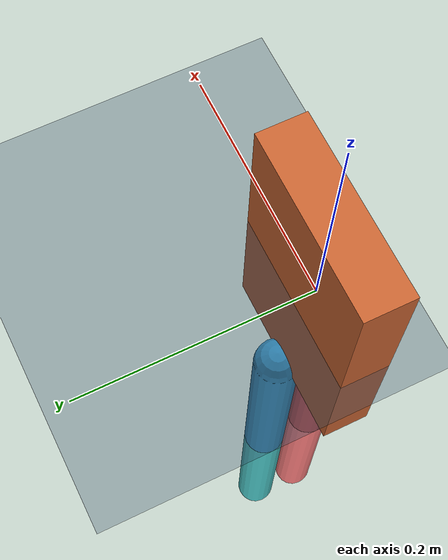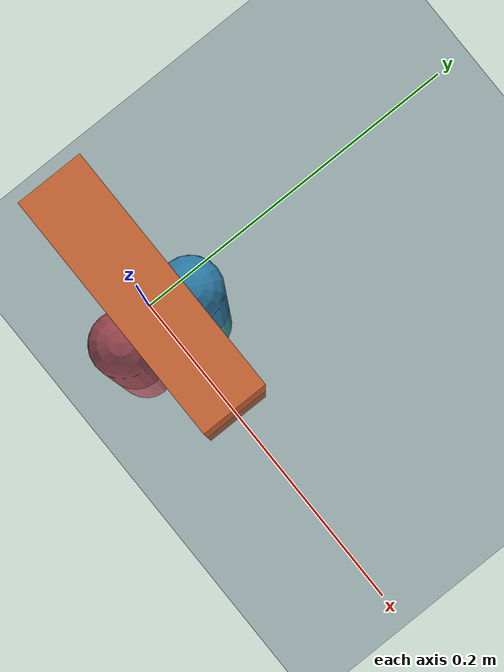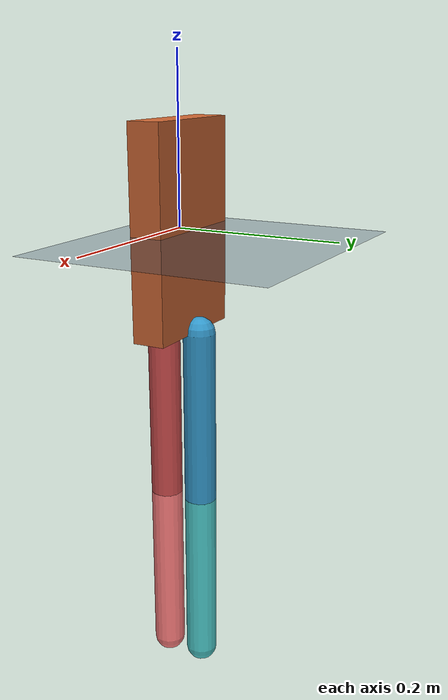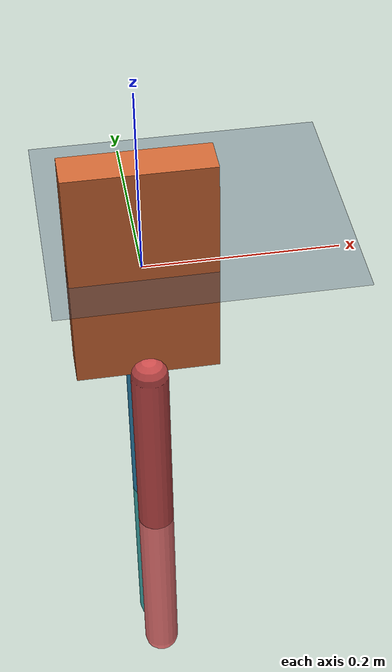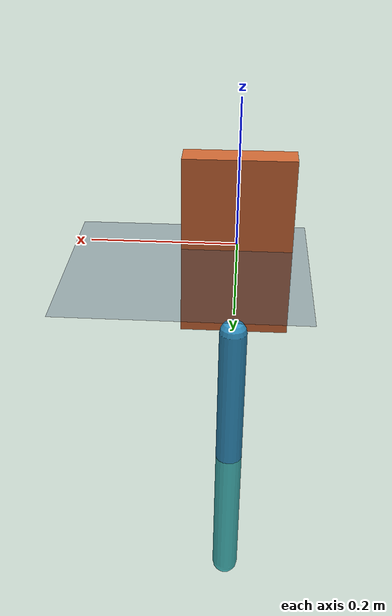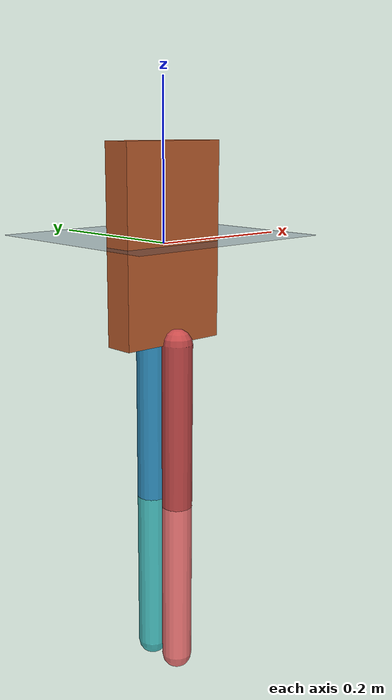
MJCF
<mujoco model="pseudo_2D_humanoid">
  <option gravity="0 0 -9.81"/>

  <default>
    <geom solimp="0.9 0.95 0.001" solref= "1e-5 1e3"
          condim="3" friction=".7 .5 0.0001"/>
  </default>

  <asset>
    <texture type="skybox" builtin="gradient" rgb1="0.5 0.7 0.9" rgb2="0 0 0"
             width="512" height="3072"/>
    <texture type="2d" name="groundplane" builtin="checker" mark="edge"
             rgb1="0.2 0.3 0.4" rgb2="0.1 0.2 0.3"
             markrgb="0.8 0.8 0.8" width="300" height="300"/>
    <material name="groundplane" texture="groundplane"
              texuniform="true" texrepeat="5 5" reflectance="0.2"/>
  </asset>

  <worldbody>
    <light pos="0 0 1.5" dir="0 0 -1" directional="true"/>

    <geom name="floor" type="plane" pos="0 0 0" size="5 5 0.1"
          material="groundplane"
          solimp="0.9 0.95 0.001" solref="1e-5 1e3"
          friction=".7 .5 0.0001"/>

    <body name="torso" pos="0 0 0">
      <geom name = "torso_geom" type="box" size="0.075 0.02 0.125" mass="8" rgba="0.8 0.4 0.2 1"/>
      <joint type="slide" axis="1 0 0"/>
      <joint type="slide" axis="0 0 1"/>
      <joint type="hinge" axis="0 1 0"/>

      <body name="left_thigh" pos="0 0.025 -0.125">
        <joint name="left_hip" type="hinge" axis="0 1 0" range="-90 90" damping="0.01"/>
        <geom name= "left_thigh_geom" type="capsule" size="0.02 0.11" pos="0 0 -0.11" mass="0.25" rgba="0.2 0.6 0.8 1"/>

        <body name="left_shin" pos="0 0 -0.22">
          <joint name="left_knee" type="hinge" axis="0 1 0" limited="true" range="1 135" damping="0.01"/>
          <geom name = 'left_contact' type="capsule" size="0.02 0.11" pos="0 0 -0.11" mass="0.25" rgba="0.3 0.8 0.8 1"/>
          <body name="left_foot" pos="0 0 -0.24"/>
        </body>
      </body>

      <body name="right_thigh" pos="0 -0.025 -0.125">
        <joint name="right_hip" type="hinge" axis="0 1 0" range="-90 90" damping="0.01"/>
        <geom name = "right_thigh_geom" type="capsule" size="0.02 0.11" pos="0 0 -0.11" mass="0.25" rgba="0.8 0.3 0.3 1"/>

        <body name="right_shin" pos="0 0 -0.22">
          <joint name="right_knee" type="hinge" axis="0 1 0" limited="true" range="1 135" damping="0.01"/>
          <geom name = "right_contact" type="capsule" size="0.02 0.11" pos="0 0 -0.11" mass="0.25" rgba="1 0.5 0.5 1"/>
          <body name="right_foot" pos="0 0 -0.24"/>
        </body>
      </body>
    </body>
  </worldbody>

  <actuator>
    <motor joint="left_hip"  ctrlrange="-100 100" gear="1"/>
    <motor joint="left_knee" ctrlrange="-100 100" gear="1"/>
    <motor joint="right_hip" ctrlrange="-100 100" gear="1"/>
    <motor joint="right_knee" ctrlrange="-100 100" gear="1"/>
  </actuator>
  <visual>
    <global offwidth="1280" offheight="720"/>
</visual>
</mujoco>
